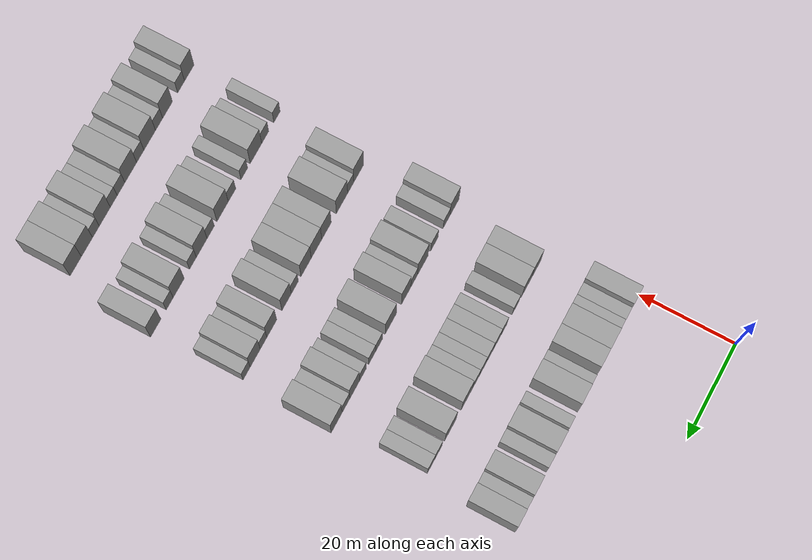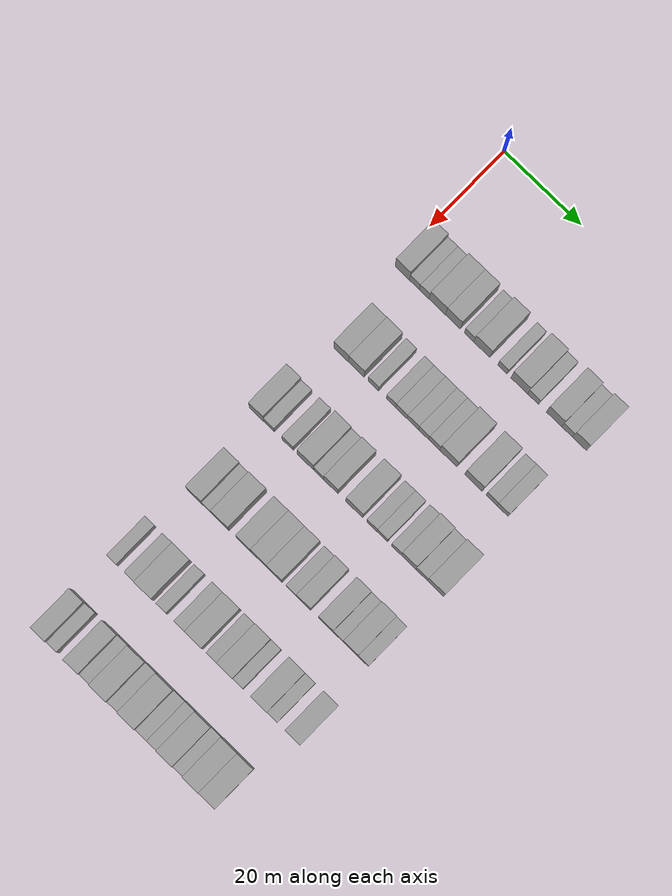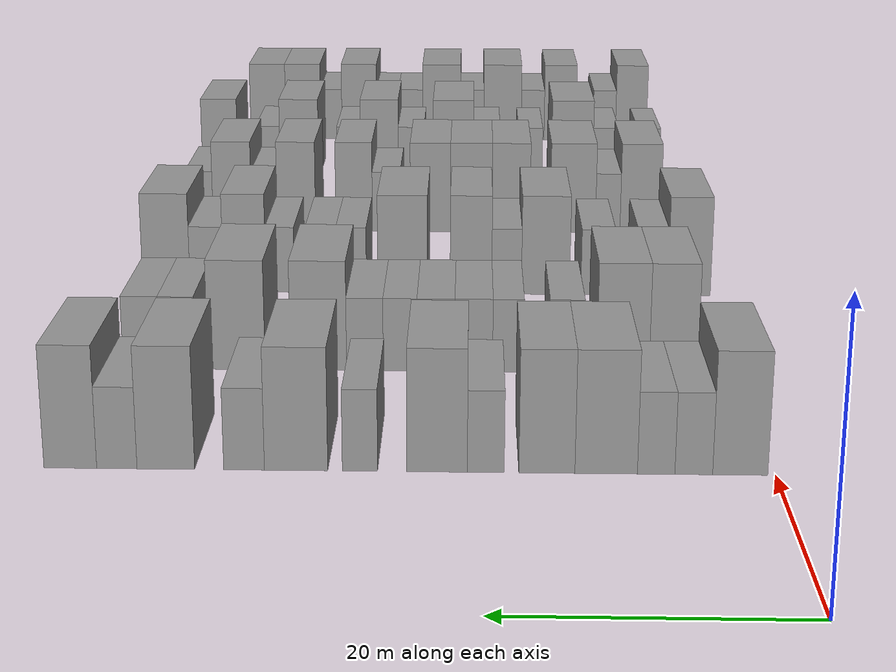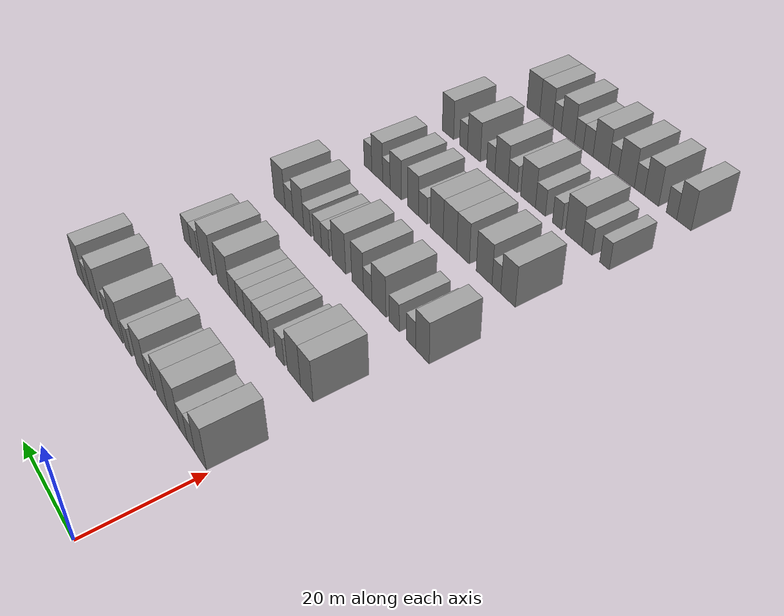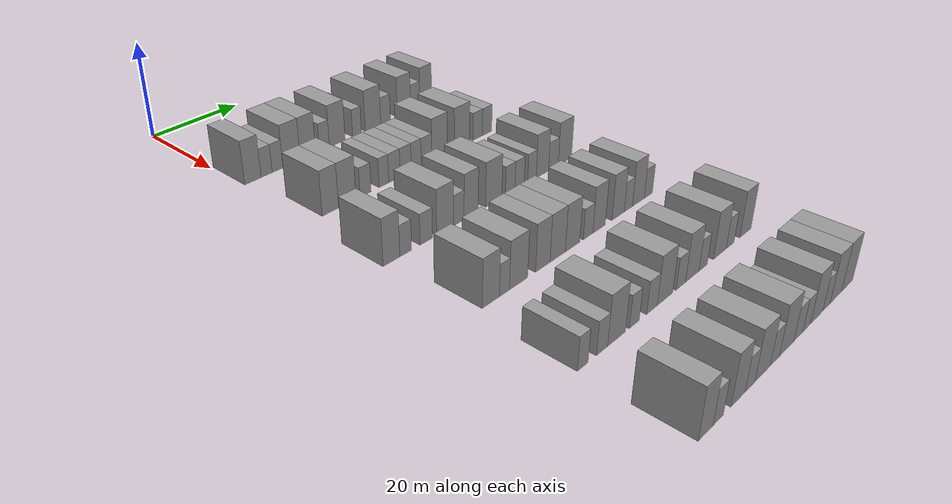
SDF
<sdf version="1.6">
 <world name="default">
  <model name="building_87">
   <static>1</static>
   <pose>25.0000 2.4082 0 0.000000 0.000000 0.000000</pose>
   <link name="link">
    <pose>0 0 4.50 0 0 0</pose>
    <collision name="collision"><geometry><box><size>10.0000 3.7510 9.0000</size></box></geometry></collision>
    <visual name="visual">
     <cast_shadows>0</cast_shadows>
     <geometry><box><size>10.0000 3.7510 9.0000</size></box></geometry>
     <material>
      <script>
       <uri>model://grey_wall/materials/scripts</uri>
       <uri>model://grey_wall/materials/textures</uri>
       <name>vrc/grey_wall</name>
      </script>
     </material>
    </visual>
   </link>
  </model>
  <model name="building_88">
   <static>1</static>
   <pose>25.0000 5.5675 0 0.000000 0.000000 0.000000</pose>
   <link name="link">
    <pose>0 0 3.00 0 0 0</pose>
    <collision name="collision"><geometry><box><size>10.0000 2.5676 6.0000</size></box></geometry></collision>
    <visual name="visual">
     <cast_shadows>0</cast_shadows>
     <geometry><box><size>10.0000 2.5676 6.0000</size></box></geometry>
     <material>
      <script>
       <uri>model://grey_wall/materials/scripts</uri>
       <uri>model://grey_wall/materials/textures</uri>
       <name>vrc/grey_wall</name>
      </script>
     </material>
    </visual>
   </link>
  </model>
  <model name="building_89">
   <static>1</static>
   <pose>25.0000 8.1268 0 0.000000 0.000000 0.000000</pose>
   <link name="link">
    <pose>0 0 3.00 0 0 0</pose>
    <collision name="collision"><geometry><box><size>10.0000 2.5512 6.0000</size></box></geometry></collision>
    <visual name="visual">
     <cast_shadows>0</cast_shadows>
     <geometry><box><size>10.0000 2.5512 6.0000</size></box></geometry>
     <material>
      <script>
       <uri>model://grey_wall/materials/scripts</uri>
       <uri>model://grey_wall/materials/textures</uri>
       <name>vrc/grey_wall</name>
      </script>
     </material>
    </visual>
   </link>
  </model>
  <model name="building_90">
   <static>1</static>
   <pose>25.0000 11.5328 0 0.000000 0.000000 0.000000</pose>
   <link name="link">
    <pose>0 0 4.50 0 0 0</pose>
    <collision name="collision"><geometry><box><size>10.0000 4.2607 9.0000</size></box></geometry></collision>
    <visual name="visual">
     <cast_shadows>0</cast_shadows>
     <geometry><box><size>10.0000 4.2607 9.0000</size></box></geometry>
     <material>
      <script>
       <uri>model://grey_wall/materials/scripts</uri>
       <uri>model://grey_wall/materials/textures</uri>
       <name>vrc/grey_wall</name>
      </script>
     </material>
    </visual>
   </link>
  </model>
  <model name="building_91">
   <static>1</static>
   <pose>25.0000 15.5744 0 0.000000 0.000000 0.000000</pose>
   <link name="link">
    <pose>0 0 4.50 0 0 0</pose>
    <collision name="collision"><geometry><box><size>10.0000 3.8226 9.0000</size></box></geometry></collision>
    <visual name="visual">
     <cast_shadows>0</cast_shadows>
     <geometry><box><size>10.0000 3.8226 9.0000</size></box></geometry>
     <material>
      <script>
       <uri>model://grey_wall/materials/scripts</uri>
       <uri>model://grey_wall/materials/textures</uri>
       <name>vrc/grey_wall</name>
      </script>
     </material>
    </visual>
   </link>
  </model>
  <model name="building_92">
   <static>1</static>
   <pose>25.0000 19.7482 0 0.000000 0.000000 0.000000</pose>
   <link name="link">
    <pose>0 0 3.00 0 0 0</pose>
    <collision name="collision"><geometry><box><size>10.0000 2.5250 6.0000</size></box></geometry></collision>
    <visual name="visual">
     <cast_shadows>0</cast_shadows>
     <geometry><box><size>10.0000 2.5250 6.0000</size></box></geometry>
     <material>
      <script>
       <uri>model://grey_wall/materials/scripts</uri>
       <uri>model://grey_wall/materials/textures</uri>
       <name>vrc/grey_wall</name>
      </script>
     </material>
    </visual>
   </link>
  </model>
  <model name="building_93">
   <static>1</static>
   <pose>25.0000 23.0848 0 0.000000 0.000000 0.000000</pose>
   <link name="link">
    <pose>0 0 4.50 0 0 0</pose>
    <collision name="collision"><geometry><box><size>10.0000 4.1483 9.0000</size></box></geometry></collision>
    <visual name="visual">
     <cast_shadows>0</cast_shadows>
     <geometry><box><size>10.0000 4.1483 9.0000</size></box></geometry>
     <material>
      <script>
       <uri>model://grey_wall/materials/scripts</uri>
       <uri>model://grey_wall/materials/textures</uri>
       <name>vrc/grey_wall</name>
      </script>
     </material>
    </visual>
   </link>
  </model>
  <model name="building_94">
   <static>1</static>
   <pose>25.0000 28.3677 0 0.000000 0.000000 0.000000</pose>
   <link name="link">
    <pose>0 0 3.00 0 0 0</pose>
    <collision name="collision"><geometry><box><size>10.0000 2.4173 6.0000</size></box></geometry></collision>
    <visual name="visual">
     <cast_shadows>0</cast_shadows>
     <geometry><box><size>10.0000 2.4173 6.0000</size></box></geometry>
     <material>
      <script>
       <uri>model://grey_wall/materials/scripts</uri>
       <uri>model://grey_wall/materials/textures</uri>
       <name>vrc/grey_wall</name>
      </script>
     </material>
    </visual>
   </link>
  </model>
  <model name="building_95">
   <static>1</static>
   <pose>25.0000 32.7526 0 0.000000 0.000000 0.000000</pose>
   <link name="link">
    <pose>0 0 4.50 0 0 0</pose>
    <collision name="collision"><geometry><box><size>10.0000 4.3526 9.0000</size></box></geometry></collision>
    <visual name="visual">
     <cast_shadows>0</cast_shadows>
     <geometry><box><size>10.0000 4.3526 9.0000</size></box></geometry>
     <material>
      <script>
       <uri>model://grey_wall/materials/scripts</uri>
       <uri>model://grey_wall/materials/textures</uri>
       <name>vrc/grey_wall</name>
      </script>
     </material>
    </visual>
   </link>
  </model>
  <model name="building_96">
   <static>1</static>
   <pose>25.0000 36.3295 0 0.000000 0.000000 0.000000</pose>
   <link name="link">
    <pose>0 0 3.00 0 0 0</pose>
    <collision name="collision"><geometry><box><size>10.0000 2.8012 6.0000</size></box></geometry></collision>
    <visual name="visual">
     <cast_shadows>0</cast_shadows>
     <geometry><box><size>10.0000 2.8012 6.0000</size></box></geometry>
     <material>
      <script>
       <uri>model://grey_wall/materials/scripts</uri>
       <uri>model://grey_wall/materials/textures</uri>
       <name>vrc/grey_wall</name>
      </script>
     </material>
    </visual>
   </link>
  </model>
  <model name="building_97">
   <static>1</static>
   <pose>25.0000 41.7178 0 0.000000 0.000000 0.000000</pose>
   <link name="link">
    <pose>0 0 4.50 0 0 0</pose>
    <collision name="collision"><geometry><box><size>10.0000 3.9753 9.0000</size></box></geometry></collision>
    <visual name="visual">
     <cast_shadows>0</cast_shadows>
     <geometry><box><size>10.0000 3.9753 9.0000</size></box></geometry>
     <material>
      <script>
       <uri>model://grey_wall/materials/scripts</uri>
       <uri>model://grey_wall/materials/textures</uri>
       <name>vrc/grey_wall</name>
      </script>
     </material>
    </visual>
   </link>
  </model>
  <model name="building_98">
   <static>1</static>
   <pose>25.0000 45.0978 0 0.000000 0.000000 0.000000</pose>
   <link name="link">
    <pose>0 0 3.00 0 0 0</pose>
    <collision name="collision"><geometry><box><size>10.0000 2.7848 6.0000</size></box></geometry></collision>
    <visual name="visual">
     <cast_shadows>0</cast_shadows>
     <geometry><box><size>10.0000 2.7848 6.0000</size></box></geometry>
     <material>
      <script>
       <uri>model://grey_wall/materials/scripts</uri>
       <uri>model://grey_wall/materials/textures</uri>
       <name>vrc/grey_wall</name>
      </script>
     </material>
    </visual>
   </link>
  </model>
  <model name="building_99">
   <static>1</static>
   <pose>25.0000 48.3134 0 0.000000 0.000000 0.000000</pose>
   <link name="link">
    <pose>0 0 4.50 0 0 0</pose>
    <collision name="collision"><geometry><box><size>10.0000 3.6464 9.0000</size></box></geometry></collision>
    <visual name="visual">
     <cast_shadows>0</cast_shadows>
     <geometry><box><size>10.0000 3.6464 9.0000</size></box></geometry>
     <material>
      <script>
       <uri>model://grey_wall/materials/scripts</uri>
       <uri>model://grey_wall/materials/textures</uri>
       <name>vrc/grey_wall</name>
      </script>
     </material>
    </visual>
   </link>
  </model>
  <model name="building_267">
   <static>1</static>
   <pose>44.0000 4.9500 0 0.000000 0.000000 0.000000</pose>
   <link name="link">
    <pose>0 0 4.50 0 0 0</pose>
    <collision name="collision"><geometry><box><size>10.0000 3.7941 9.0000</size></box></geometry></collision>
    <visual name="visual">
     <cast_shadows>0</cast_shadows>
     <geometry><box><size>10.0000 3.7941 9.0000</size></box></geometry>
     <material>
      <script>
       <uri>model://grey_wall/materials/scripts</uri>
       <uri>model://grey_wall/materials/textures</uri>
       <name>vrc/grey_wall</name>
      </script>
     </material>
    </visual>
   </link>
  </model>
  <model name="building_268">
   <static>1</static>
   <pose>44.0000 8.8960 0 0.000000 0.000000 0.000000</pose>
   <link name="link">
    <pose>0 0 4.50 0 0 0</pose>
    <collision name="collision"><geometry><box><size>10.0000 4.0979 9.0000</size></box></geometry></collision>
    <visual name="visual">
     <cast_shadows>0</cast_shadows>
     <geometry><box><size>10.0000 4.0979 9.0000</size></box></geometry>
     <material>
      <script>
       <uri>model://grey_wall/materials/scripts</uri>
       <uri>model://grey_wall/materials/textures</uri>
       <name>vrc/grey_wall</name>
      </script>
     </material>
    </visual>
   </link>
  </model>
  <model name="building_269">
   <static>1</static>
   <pose>44.0000 13.3048 0 0.000000 0.000000 0.000000</pose>
   <link name="link">
    <pose>0 0 3.00 0 0 0</pose>
    <collision name="collision"><geometry><box><size>10.0000 2.7197 6.0000</size></box></geometry></collision>
    <visual name="visual">
     <cast_shadows>0</cast_shadows>
     <geometry><box><size>10.0000 2.7197 6.0000</size></box></geometry>
     <material>
      <script>
       <uri>model://grey_wall/materials/scripts</uri>
       <uri>model://grey_wall/materials/textures</uri>
       <name>vrc/grey_wall</name>
      </script>
     </material>
    </visual>
   </link>
  </model>
  <model name="building_270">
   <static>1</static>
   <pose>44.0000 17.8804 0 0.000000 0.000000 0.000000</pose>
   <link name="link">
    <pose>0 0 3.00 0 0 0</pose>
    <collision name="collision"><geometry><box><size>10.0000 2.4316 6.0000</size></box></geometry></collision>
    <visual name="visual">
     <cast_shadows>0</cast_shadows>
     <geometry><box><size>10.0000 2.4316 6.0000</size></box></geometry>
     <material>
      <script>
       <uri>model://grey_wall/materials/scripts</uri>
       <uri>model://grey_wall/materials/textures</uri>
       <name>vrc/grey_wall</name>
      </script>
     </material>
    </visual>
   </link>
  </model>
  <model name="building_271">
   <static>1</static>
   <pose>44.0000 20.5821 0 0.000000 0.000000 0.000000</pose>
   <link name="link">
    <pose>0 0 3.00 0 0 0</pose>
    <collision name="collision"><geometry><box><size>10.0000 2.9718 6.0000</size></box></geometry></collision>
    <visual name="visual">
     <cast_shadows>0</cast_shadows>
     <geometry><box><size>10.0000 2.9718 6.0000</size></box></geometry>
     <material>
      <script>
       <uri>model://grey_wall/materials/scripts</uri>
       <uri>model://grey_wall/materials/textures</uri>
       <name>vrc/grey_wall</name>
      </script>
     </material>
    </visual>
   </link>
  </model>
  <model name="building_272">
   <static>1</static>
   <pose>44.0000 23.5474 0 0.000000 0.000000 0.000000</pose>
   <link name="link">
    <pose>0 0 3.00 0 0 0</pose>
    <collision name="collision"><geometry><box><size>10.0000 2.9587 6.0000</size></box></geometry></collision>
    <visual name="visual">
     <cast_shadows>0</cast_shadows>
     <geometry><box><size>10.0000 2.9587 6.0000</size></box></geometry>
     <material>
      <script>
       <uri>model://grey_wall/materials/scripts</uri>
       <uri>model://grey_wall/materials/textures</uri>
       <name>vrc/grey_wall</name>
      </script>
     </material>
    </visual>
   </link>
  </model>
  <model name="building_273">
   <static>1</static>
   <pose>44.0000 26.3529 0 0.000000 0.000000 0.000000</pose>
   <link name="link">
    <pose>0 0 3.00 0 0 0</pose>
    <collision name="collision"><geometry><box><size>10.0000 2.6524 6.0000</size></box></geometry></collision>
    <visual name="visual">
     <cast_shadows>0</cast_shadows>
     <geometry><box><size>10.0000 2.6524 6.0000</size></box></geometry>
     <material>
      <script>
       <uri>model://grey_wall/materials/scripts</uri>
       <uri>model://grey_wall/materials/textures</uri>
       <name>vrc/grey_wall</name>
      </script>
     </material>
    </visual>
   </link>
  </model>
  <model name="building_274">
   <static>1</static>
   <pose>44.0000 29.1200 0 0.000000 0.000000 0.000000</pose>
   <link name="link">
    <pose>0 0 3.00 0 0 0</pose>
    <collision name="collision"><geometry><box><size>10.0000 2.8819 6.0000</size></box></geometry></collision>
    <visual name="visual">
     <cast_shadows>0</cast_shadows>
     <geometry><box><size>10.0000 2.8819 6.0000</size></box></geometry>
     <material>
      <script>
       <uri>model://grey_wall/materials/scripts</uri>
       <uri>model://grey_wall/materials/textures</uri>
       <name>vrc/grey_wall</name>
      </script>
     </material>
    </visual>
   </link>
  </model>
  <model name="building_275">
   <static>1</static>
   <pose>44.0000 32.7678 0 0.000000 0.000000 0.000000</pose>
   <link name="link">
    <pose>0 0 4.50 0 0 0</pose>
    <collision name="collision"><geometry><box><size>10.0000 4.4136 9.0000</size></box></geometry></collision>
    <visual name="visual">
     <cast_shadows>0</cast_shadows>
     <geometry><box><size>10.0000 4.4136 9.0000</size></box></geometry>
     <material>
      <script>
       <uri>model://grey_wall/materials/scripts</uri>
       <uri>model://grey_wall/materials/textures</uri>
       <name>vrc/grey_wall</name>
      </script>
     </material>
    </visual>
   </link>
  </model>
  <model name="building_276">
   <static>1</static>
   <pose>44.0000 39.2244 0 0.000000 0.000000 0.000000</pose>
   <link name="link">
    <pose>0 0 4.50 0 0 0</pose>
    <collision name="collision"><geometry><box><size>10.0000 4.4996 9.0000</size></box></geometry></collision>
    <visual name="visual">
     <cast_shadows>0</cast_shadows>
     <geometry><box><size>10.0000 4.4996 9.0000</size></box></geometry>
     <material>
      <script>
       <uri>model://grey_wall/materials/scripts</uri>
       <uri>model://grey_wall/materials/textures</uri>
       <name>vrc/grey_wall</name>
      </script>
     </material>
    </visual>
   </link>
  </model>
  <model name="building_277">
   <static>1</static>
   <pose>44.0000 43.8831 0 0.000000 0.000000 0.000000</pose>
   <link name="link">
    <pose>0 0 3.00 0 0 0</pose>
    <collision name="collision"><geometry><box><size>10.0000 2.8178 6.0000</size></box></geometry></collision>
    <visual name="visual">
     <cast_shadows>0</cast_shadows>
     <geometry><box><size>10.0000 2.8178 6.0000</size></box></geometry>
     <material>
      <script>
       <uri>model://grey_wall/materials/scripts</uri>
       <uri>model://grey_wall/materials/textures</uri>
       <name>vrc/grey_wall</name>
      </script>
     </material>
    </visual>
   </link>
  </model>
  <model name="building_278">
   <static>1</static>
   <pose>44.0000 46.7448 0 0.000000 0.000000 0.000000</pose>
   <link name="link">
    <pose>0 0 3.00 0 0 0</pose>
    <collision name="collision"><geometry><box><size>10.0000 2.9056 6.0000</size></box></geometry></collision>
    <visual name="visual">
     <cast_shadows>0</cast_shadows>
     <geometry><box><size>10.0000 2.9056 6.0000</size></box></geometry>
     <material>
      <script>
       <uri>model://grey_wall/materials/scripts</uri>
       <uri>model://grey_wall/materials/textures</uri>
       <name>vrc/grey_wall</name>
      </script>
     </material>
    </visual>
   </link>
  </model>
  <model name="building_441">
   <static>1</static>
   <pose>63.0000 1.5656 0 0.000000 0.000000 0.000000</pose>
   <link name="link">
    <pose>0 0 4.50 0 0 0</pose>
    <collision name="collision"><geometry><box><size>10.0000 3.7555 9.0000</size></box></geometry></collision>
    <visual name="visual">
     <cast_shadows>0</cast_shadows>
     <geometry><box><size>10.0000 3.7555 9.0000</size></box></geometry>
     <material>
      <script>
       <uri>model://grey_wall/materials/scripts</uri>
       <uri>model://grey_wall/materials/textures</uri>
       <name>vrc/grey_wall</name>
      </script>
     </material>
    </visual>
   </link>
  </model>
  <model name="building_442">
   <static>1</static>
   <pose>63.0000 4.7955 0 0.000000 0.000000 0.000000</pose>
   <link name="link">
    <pose>0 0 3.00 0 0 0</pose>
    <collision name="collision"><geometry><box><size>10.0000 2.7044 6.0000</size></box></geometry></collision>
    <visual name="visual">
     <cast_shadows>0</cast_shadows>
     <geometry><box><size>10.0000 2.7044 6.0000</size></box></geometry>
     <material>
      <script>
       <uri>model://grey_wall/materials/scripts</uri>
       <uri>model://grey_wall/materials/textures</uri>
       <name>vrc/grey_wall</name>
      </script>
     </material>
    </visual>
   </link>
  </model>
  <model name="building_443">
   <static>1</static>
   <pose>63.0000 9.6226 0 0.000000 0.000000 0.000000</pose>
   <link name="link">
    <pose>0 0 3.00 0 0 0</pose>
    <collision name="collision"><geometry><box><size>10.0000 2.9498 6.0000</size></box></geometry></collision>
    <visual name="visual">
     <cast_shadows>0</cast_shadows>
     <geometry><box><size>10.0000 2.9498 6.0000</size></box></geometry>
     <material>
      <script>
       <uri>model://grey_wall/materials/scripts</uri>
       <uri>model://grey_wall/materials/textures</uri>
       <name>vrc/grey_wall</name>
      </script>
     </material>
    </visual>
   </link>
  </model>
  <model name="building_444">
   <static>1</static>
   <pose>63.0000 14.2232 0 0.000000 0.000000 0.000000</pose>
   <link name="link">
    <pose>0 0 4.50 0 0 0</pose>
    <collision name="collision"><geometry><box><size>10.0000 4.2514 9.0000</size></box></geometry></collision>
    <visual name="visual">
     <cast_shadows>0</cast_shadows>
     <geometry><box><size>10.0000 4.2514 9.0000</size></box></geometry>
     <material>
      <script>
       <uri>model://grey_wall/materials/scripts</uri>
       <uri>model://grey_wall/materials/textures</uri>
       <name>vrc/grey_wall</name>
      </script>
     </material>
    </visual>
   </link>
  </model>
  <model name="building_445">
   <static>1</static>
   <pose>63.0000 17.6641 0 0.000000 0.000000 0.000000</pose>
   <link name="link">
    <pose>0 0 3.00 0 0 0</pose>
    <collision name="collision"><geometry><box><size>10.0000 2.6304 6.0000</size></box></geometry></collision>
    <visual name="visual">
     <cast_shadows>0</cast_shadows>
     <geometry><box><size>10.0000 2.6304 6.0000</size></box></geometry>
     <material>
      <script>
       <uri>model://grey_wall/materials/scripts</uri>
       <uri>model://grey_wall/materials/textures</uri>
       <name>vrc/grey_wall</name>
      </script>
     </material>
    </visual>
   </link>
  </model>
  <model name="building_446">
   <static>1</static>
   <pose>63.0000 20.8182 0 0.000000 0.000000 0.000000</pose>
   <link name="link">
    <pose>0 0 4.50 0 0 0</pose>
    <collision name="collision"><geometry><box><size>10.0000 3.6778 9.0000</size></box></geometry></collision>
    <visual name="visual">
     <cast_shadows>0</cast_shadows>
     <geometry><box><size>10.0000 3.6778 9.0000</size></box></geometry>
     <material>
      <script>
       <uri>model://grey_wall/materials/scripts</uri>
       <uri>model://grey_wall/materials/textures</uri>
       <name>vrc/grey_wall</name>
      </script>
     </material>
    </visual>
   </link>
  </model>
  <model name="building_447">
   <static>1</static>
   <pose>63.0000 26.8643 0 0.000000 0.000000 0.000000</pose>
   <link name="link">
    <pose>0 0 4.50 0 0 0</pose>
    <collision name="collision"><geometry><box><size>10.0000 4.4143 9.0000</size></box></geometry></collision>
    <visual name="visual">
     <cast_shadows>0</cast_shadows>
     <geometry><box><size>10.0000 4.4143 9.0000</size></box></geometry>
     <material>
      <script>
       <uri>model://grey_wall/materials/scripts</uri>
       <uri>model://grey_wall/materials/textures</uri>
       <name>vrc/grey_wall</name>
      </script>
     </material>
    </visual>
   </link>
  </model>
  <model name="building_448">
   <static>1</static>
   <pose>63.0000 31.4119 0 0.000000 0.000000 0.000000</pose>
   <link name="link">
    <pose>0 0 3.00 0 0 0</pose>
    <collision name="collision"><geometry><box><size>10.0000 2.6809 6.0000</size></box></geometry></collision>
    <visual name="visual">
     <cast_shadows>0</cast_shadows>
     <geometry><box><size>10.0000 2.6809 6.0000</size></box></geometry>
     <material>
      <script>
       <uri>model://grey_wall/materials/scripts</uri>
       <uri>model://grey_wall/materials/textures</uri>
       <name>vrc/grey_wall</name>
      </script>
     </material>
    </visual>
   </link>
  </model>
  <model name="building_449">
   <static>1</static>
   <pose>63.0000 34.1039 0 0.000000 0.000000 0.000000</pose>
   <link name="link">
    <pose>0 0 3.00 0 0 0</pose>
    <collision name="collision"><geometry><box><size>10.0000 2.7030 6.0000</size></box></geometry></collision>
    <visual name="visual">
     <cast_shadows>0</cast_shadows>
     <geometry><box><size>10.0000 2.7030 6.0000</size></box></geometry>
     <material>
      <script>
       <uri>model://grey_wall/materials/scripts</uri>
       <uri>model://grey_wall/materials/textures</uri>
       <name>vrc/grey_wall</name>
      </script>
     </material>
    </visual>
   </link>
  </model>
  <model name="building_450">
   <static>1</static>
   <pose>63.0000 37.7254 0 0.000000 0.000000 0.000000</pose>
   <link name="link">
    <pose>0 0 3.00 0 0 0</pose>
    <collision name="collision"><geometry><box><size>10.0000 2.5400 6.0000</size></box></geometry></collision>
    <visual name="visual">
     <cast_shadows>0</cast_shadows>
     <geometry><box><size>10.0000 2.5400 6.0000</size></box></geometry>
     <material>
      <script>
       <uri>model://grey_wall/materials/scripts</uri>
       <uri>model://grey_wall/materials/textures</uri>
       <name>vrc/grey_wall</name>
      </script>
     </material>
    </visual>
   </link>
  </model>
  <model name="building_451">
   <static>1</static>
   <pose>63.0000 40.8870 0 0.000000 0.000000 0.000000</pose>
   <link name="link">
    <pose>0 0 4.50 0 0 0</pose>
    <collision name="collision"><geometry><box><size>10.0000 3.7831 9.0000</size></box></geometry></collision>
    <visual name="visual">
     <cast_shadows>0</cast_shadows>
     <geometry><box><size>10.0000 3.7831 9.0000</size></box></geometry>
     <material>
      <script>
       <uri>model://grey_wall/materials/scripts</uri>
       <uri>model://grey_wall/materials/textures</uri>
       <name>vrc/grey_wall</name>
      </script>
     </material>
    </visual>
   </link>
  </model>
  <model name="building_452">
   <static>1</static>
   <pose>63.0000 44.2665 0 0.000000 0.000000 0.000000</pose>
   <link name="link">
    <pose>0 0 3.00 0 0 0</pose>
    <collision name="collision"><geometry><box><size>10.0000 2.9758 6.0000</size></box></geometry></collision>
    <visual name="visual">
     <cast_shadows>0</cast_shadows>
     <geometry><box><size>10.0000 2.9758 6.0000</size></box></geometry>
     <material>
      <script>
       <uri>model://grey_wall/materials/scripts</uri>
       <uri>model://grey_wall/materials/textures</uri>
       <name>vrc/grey_wall</name>
      </script>
     </material>
    </visual>
   </link>
  </model>
  <model name="building_453">
   <static>1</static>
   <pose>63.0000 47.8612 0 0.000000 0.000000 0.000000</pose>
   <link name="link">
    <pose>0 0 4.50 0 0 0</pose>
    <collision name="collision"><geometry><box><size>10.0000 4.2136 9.0000</size></box></geometry></collision>
    <visual name="visual">
     <cast_shadows>0</cast_shadows>
     <geometry><box><size>10.0000 4.2136 9.0000</size></box></geometry>
     <material>
      <script>
       <uri>model://grey_wall/materials/scripts</uri>
       <uri>model://grey_wall/materials/textures</uri>
       <name>vrc/grey_wall</name>
      </script>
     </material>
    </visual>
   </link>
  </model>
  <model name="building_612">
   <static>1</static>
   <pose>82.0000 4.1869 0 0.000000 0.000000 0.000000</pose>
   <link name="link">
    <pose>0 0 4.50 0 0 0</pose>
    <collision name="collision"><geometry><box><size>10.0000 3.9731 9.0000</size></box></geometry></collision>
    <visual name="visual">
     <cast_shadows>0</cast_shadows>
     <geometry><box><size>10.0000 3.9731 9.0000</size></box></geometry>
     <material>
      <script>
       <uri>model://grey_wall/materials/scripts</uri>
       <uri>model://grey_wall/materials/textures</uri>
       <name>vrc/grey_wall</name>
      </script>
     </material>
    </visual>
   </link>
  </model>
  <model name="building_613">
   <static>1</static>
   <pose>82.0000 7.3832 0 0.000000 0.000000 0.000000</pose>
   <link name="link">
    <pose>0 0 3.00 0 0 0</pose>
    <collision name="collision"><geometry><box><size>10.0000 2.4195 6.0000</size></box></geometry></collision>
    <visual name="visual">
     <cast_shadows>0</cast_shadows>
     <geometry><box><size>10.0000 2.4195 6.0000</size></box></geometry>
     <material>
      <script>
       <uri>model://grey_wall/materials/scripts</uri>
       <uri>model://grey_wall/materials/textures</uri>
       <name>vrc/grey_wall</name>
      </script>
     </material>
    </visual>
   </link>
  </model>
  <model name="building_614">
   <static>1</static>
   <pose>82.0000 10.8108 0 0.000000 0.000000 0.000000</pose>
   <link name="link">
    <pose>0 0 4.50 0 0 0</pose>
    <collision name="collision"><geometry><box><size>10.0000 4.4359 9.0000</size></box></geometry></collision>
    <visual name="visual">
     <cast_shadows>0</cast_shadows>
     <geometry><box><size>10.0000 4.4359 9.0000</size></box></geometry>
     <material>
      <script>
       <uri>model://grey_wall/materials/scripts</uri>
       <uri>model://grey_wall/materials/textures</uri>
       <name>vrc/grey_wall</name>
      </script>
     </material>
    </visual>
   </link>
  </model>
  <model name="building_615">
   <static>1</static>
   <pose>82.0000 16.8968 0 0.000000 0.000000 0.000000</pose>
   <link name="link">
    <pose>0 0 4.50 0 0 0</pose>
    <collision name="collision"><geometry><box><size>10.0000 3.7361 9.0000</size></box></geometry></collision>
    <visual name="visual">
     <cast_shadows>0</cast_shadows>
     <geometry><box><size>10.0000 3.7361 9.0000</size></box></geometry>
     <material>
      <script>
       <uri>model://grey_wall/materials/scripts</uri>
       <uri>model://grey_wall/materials/textures</uri>
       <name>vrc/grey_wall</name>
      </script>
     </material>
    </visual>
   </link>
  </model>
  <model name="building_616">
   <static>1</static>
   <pose>82.0000 20.8107 0 0.000000 0.000000 0.000000</pose>
   <link name="link">
    <pose>0 0 4.50 0 0 0</pose>
    <collision name="collision"><geometry><box><size>10.0000 4.0918 9.0000</size></box></geometry></collision>
    <visual name="visual">
     <cast_shadows>0</cast_shadows>
     <geometry><box><size>10.0000 4.0918 9.0000</size></box></geometry>
     <material>
      <script>
       <uri>model://grey_wall/materials/scripts</uri>
       <uri>model://grey_wall/materials/textures</uri>
       <name>vrc/grey_wall</name>
      </script>
     </material>
    </visual>
   </link>
  </model>
  <model name="building_617">
   <static>1</static>
   <pose>82.0000 24.8374 0 0.000000 0.000000 0.000000</pose>
   <link name="link">
    <pose>0 0 4.50 0 0 0</pose>
    <collision name="collision"><geometry><box><size>10.0000 3.9616 9.0000</size></box></geometry></collision>
    <visual name="visual">
     <cast_shadows>0</cast_shadows>
     <geometry><box><size>10.0000 3.9616 9.0000</size></box></geometry>
     <material>
      <script>
       <uri>model://grey_wall/materials/scripts</uri>
       <uri>model://grey_wall/materials/textures</uri>
       <name>vrc/grey_wall</name>
      </script>
     </material>
    </visual>
   </link>
  </model>
  <model name="building_618">
   <static>1</static>
   <pose>82.0000 29.1905 0 0.000000 0.000000 0.000000</pose>
   <link name="link">
    <pose>0 0 3.00 0 0 0</pose>
    <collision name="collision"><geometry><box><size>10.0000 2.7445 6.0000</size></box></geometry></collision>
    <visual name="visual">
     <cast_shadows>0</cast_shadows>
     <geometry><box><size>10.0000 2.7445 6.0000</size></box></geometry>
     <material>
      <script>
       <uri>model://grey_wall/materials/scripts</uri>
       <uri>model://grey_wall/materials/textures</uri>
       <name>vrc/grey_wall</name>
      </script>
     </material>
    </visual>
   </link>
  </model>
  <model name="building_619">
   <static>1</static>
   <pose>82.0000 32.3657 0 0.000000 0.000000 0.000000</pose>
   <link name="link">
    <pose>0 0 4.50 0 0 0</pose>
    <collision name="collision"><geometry><box><size>10.0000 3.6060 9.0000</size></box></geometry></collision>
    <visual name="visual">
     <cast_shadows>0</cast_shadows>
     <geometry><box><size>10.0000 3.6060 9.0000</size></box></geometry>
     <material>
      <script>
       <uri>model://grey_wall/materials/scripts</uri>
       <uri>model://grey_wall/materials/textures</uri>
       <name>vrc/grey_wall</name>
      </script>
     </material>
    </visual>
   </link>
  </model>
  <model name="building_620">
   <static>1</static>
   <pose>82.0000 38.0632 0 0.000000 0.000000 0.000000</pose>
   <link name="link">
    <pose>0 0 4.50 0 0 0</pose>
    <collision name="collision"><geometry><box><size>10.0000 3.7889 9.0000</size></box></geometry></collision>
    <visual name="visual">
     <cast_shadows>0</cast_shadows>
     <geometry><box><size>10.0000 3.7889 9.0000</size></box></geometry>
     <material>
      <script>
       <uri>model://grey_wall/materials/scripts</uri>
       <uri>model://grey_wall/materials/textures</uri>
       <name>vrc/grey_wall</name>
      </script>
     </material>
    </visual>
   </link>
  </model>
  <model name="building_621">
   <static>1</static>
   <pose>82.0000 41.2232 0 0.000000 0.000000 0.000000</pose>
   <link name="link">
    <pose>0 0 3.00 0 0 0</pose>
    <collision name="collision"><geometry><box><size>10.0000 2.5311 6.0000</size></box></geometry></collision>
    <visual name="visual">
     <cast_shadows>0</cast_shadows>
     <geometry><box><size>10.0000 2.5311 6.0000</size></box></geometry>
     <material>
      <script>
       <uri>model://grey_wall/materials/scripts</uri>
       <uri>model://grey_wall/materials/textures</uri>
       <name>vrc/grey_wall</name>
      </script>
     </material>
    </visual>
   </link>
  </model>
  <model name="building_622">
   <static>1</static>
   <pose>82.0000 44.4005 0 0.000000 0.000000 0.000000</pose>
   <link name="link">
    <pose>0 0 4.50 0 0 0</pose>
    <collision name="collision"><geometry><box><size>10.0000 3.8234 9.0000</size></box></geometry></collision>
    <visual name="visual">
     <cast_shadows>0</cast_shadows>
     <geometry><box><size>10.0000 3.8234 9.0000</size></box></geometry>
     <material>
      <script>
       <uri>model://grey_wall/materials/scripts</uri>
       <uri>model://grey_wall/materials/textures</uri>
       <name>vrc/grey_wall</name>
      </script>
     </material>
    </visual>
   </link>
  </model>
  <model name="building_623">
   <static>1</static>
   <pose>82.0000 47.6516 0 0.000000 0.000000 0.000000</pose>
   <link name="link">
    <pose>0 0 3.00 0 0 0</pose>
    <collision name="collision"><geometry><box><size>10.0000 2.6788 6.0000</size></box></geometry></collision>
    <visual name="visual">
     <cast_shadows>0</cast_shadows>
     <geometry><box><size>10.0000 2.6788 6.0000</size></box></geometry>
     <material>
      <script>
       <uri>model://grey_wall/materials/scripts</uri>
       <uri>model://grey_wall/materials/textures</uri>
       <name>vrc/grey_wall</name>
      </script>
     </material>
    </visual>
   </link>
  </model>
  <model name="building_795">
   <static>1</static>
   <pose>101.0000 1.7011 0 0.000000 0.000000 0.000000</pose>
   <link name="link">
    <pose>0 0 3.00 0 0 0</pose>
    <collision name="collision"><geometry><box><size>10.0000 2.4750 6.0000</size></box></geometry></collision>
    <visual name="visual">
     <cast_shadows>0</cast_shadows>
     <geometry><box><size>10.0000 2.4750 6.0000</size></box></geometry>
     <material>
      <script>
       <uri>model://grey_wall/materials/scripts</uri>
       <uri>model://grey_wall/materials/textures</uri>
       <name>vrc/grey_wall</name>
      </script>
     </material>
    </visual>
   </link>
  </model>
  <model name="building_796">
   <static>1</static>
   <pose>101.0000 6.3035 0 0.000000 0.000000 0.000000</pose>
   <link name="link">
    <pose>0 0 3.00 0 0 0</pose>
    <collision name="collision"><geometry><box><size>10.0000 2.7299 6.0000</size></box></geometry></collision>
    <visual name="visual">
     <cast_shadows>0</cast_shadows>
     <geometry><box><size>10.0000 2.7299 6.0000</size></box></geometry>
     <material>
      <script>
       <uri>model://grey_wall/materials/scripts</uri>
       <uri>model://grey_wall/materials/textures</uri>
       <name>vrc/grey_wall</name>
      </script>
     </material>
    </visual>
   </link>
  </model>
  <model name="building_797">
   <static>1</static>
   <pose>101.0000 9.9056 0 0.000000 0.000000 0.000000</pose>
   <link name="link">
    <pose>0 0 4.50 0 0 0</pose>
    <collision name="collision"><geometry><box><size>10.0000 4.4742 9.0000</size></box></geometry></collision>
    <visual name="visual">
     <cast_shadows>0</cast_shadows>
     <geometry><box><size>10.0000 4.4742 9.0000</size></box></geometry>
     <material>
      <script>
       <uri>model://grey_wall/materials/scripts</uri>
       <uri>model://grey_wall/materials/textures</uri>
       <name>vrc/grey_wall</name>
      </script>
     </material>
    </visual>
   </link>
  </model>
  <model name="building_798">
   <static>1</static>
   <pose>101.0000 14.4424 0 0.000000 0.000000 0.000000</pose>
   <link name="link">
    <pose>0 0 3.00 0 0 0</pose>
    <collision name="collision"><geometry><box><size>10.0000 2.5995 6.0000</size></box></geometry></collision>
    <visual name="visual">
     <cast_shadows>0</cast_shadows>
     <geometry><box><size>10.0000 2.5995 6.0000</size></box></geometry>
     <material>
      <script>
       <uri>model://grey_wall/materials/scripts</uri>
       <uri>model://grey_wall/materials/textures</uri>
       <name>vrc/grey_wall</name>
      </script>
     </material>
    </visual>
   </link>
  </model>
  <model name="building_799">
   <static>1</static>
   <pose>101.0000 19.1825 0 0.000000 0.000000 0.000000</pose>
   <link name="link">
    <pose>0 0 3.00 0 0 0</pose>
    <collision name="collision"><geometry><box><size>10.0000 2.8809 6.0000</size></box></geometry></collision>
    <visual name="visual">
     <cast_shadows>0</cast_shadows>
     <geometry><box><size>10.0000 2.8809 6.0000</size></box></geometry>
     <material>
      <script>
       <uri>model://grey_wall/materials/scripts</uri>
       <uri>model://grey_wall/materials/textures</uri>
       <name>vrc/grey_wall</name>
      </script>
     </material>
    </visual>
   </link>
  </model>
  <model name="building_800">
   <static>1</static>
   <pose>101.0000 22.7941 0 0.000000 0.000000 0.000000</pose>
   <link name="link">
    <pose>0 0 4.50 0 0 0</pose>
    <collision name="collision"><geometry><box><size>10.0000 4.3423 9.0000</size></box></geometry></collision>
    <visual name="visual">
     <cast_shadows>0</cast_shadows>
     <geometry><box><size>10.0000 4.3423 9.0000</size></box></geometry>
     <material>
      <script>
       <uri>model://grey_wall/materials/scripts</uri>
       <uri>model://grey_wall/materials/textures</uri>
       <name>vrc/grey_wall</name>
      </script>
     </material>
    </visual>
   </link>
  </model>
  <model name="building_801">
   <static>1</static>
   <pose>101.0000 27.3637 0 0.000000 0.000000 0.000000</pose>
   <link name="link">
    <pose>0 0 3.00 0 0 0</pose>
    <collision name="collision"><geometry><box><size>10.0000 2.7969 6.0000</size></box></geometry></collision>
    <visual name="visual">
     <cast_shadows>0</cast_shadows>
     <geometry><box><size>10.0000 2.7969 6.0000</size></box></geometry>
     <material>
      <script>
       <uri>model://grey_wall/materials/scripts</uri>
       <uri>model://grey_wall/materials/textures</uri>
       <name>vrc/grey_wall</name>
      </script>
     </material>
    </visual>
   </link>
  </model>
  <model name="building_802">
   <static>1</static>
   <pose>101.0000 30.8039 0 0.000000 0.000000 0.000000</pose>
   <link name="link">
    <pose>0 0 4.50 0 0 0</pose>
    <collision name="collision"><geometry><box><size>10.0000 4.0835 9.0000</size></box></geometry></collision>
    <visual name="visual">
     <cast_shadows>0</cast_shadows>
     <geometry><box><size>10.0000 4.0835 9.0000</size></box></geometry>
     <material>
      <script>
       <uri>model://grey_wall/materials/scripts</uri>
       <uri>model://grey_wall/materials/textures</uri>
       <name>vrc/grey_wall</name>
      </script>
     </material>
    </visual>
   </link>
  </model>
  <model name="building_803">
   <static>1</static>
   <pose>101.0000 34.1363 0 0.000000 0.000000 0.000000</pose>
   <link name="link">
    <pose>0 0 3.00 0 0 0</pose>
    <collision name="collision"><geometry><box><size>10.0000 2.5813 6.0000</size></box></geometry></collision>
    <visual name="visual">
     <cast_shadows>0</cast_shadows>
     <geometry><box><size>10.0000 2.5813 6.0000</size></box></geometry>
     <material>
      <script>
       <uri>model://grey_wall/materials/scripts</uri>
       <uri>model://grey_wall/materials/textures</uri>
       <name>vrc/grey_wall</name>
      </script>
     </material>
    </visual>
   </link>
  </model>
  <model name="building_804">
   <static>1</static>
   <pose>101.0000 39.5192 0 0.000000 0.000000 0.000000</pose>
   <link name="link">
    <pose>0 0 4.50 0 0 0</pose>
    <collision name="collision"><geometry><box><size>10.0000 4.1844 9.0000</size></box></geometry></collision>
    <visual name="visual">
     <cast_shadows>0</cast_shadows>
     <geometry><box><size>10.0000 4.1844 9.0000</size></box></geometry>
     <material>
      <script>
       <uri>model://grey_wall/materials/scripts</uri>
       <uri>model://grey_wall/materials/textures</uri>
       <name>vrc/grey_wall</name>
      </script>
     </material>
    </visual>
   </link>
  </model>
  <model name="building_805">
   <static>1</static>
   <pose>101.0000 42.9150 0 0.000000 0.000000 0.000000</pose>
   <link name="link">
    <pose>0 0 3.00 0 0 0</pose>
    <collision name="collision"><geometry><box><size>10.0000 2.6073 6.0000</size></box></geometry></collision>
    <visual name="visual">
     <cast_shadows>0</cast_shadows>
     <geometry><box><size>10.0000 2.6073 6.0000</size></box></geometry>
     <material>
      <script>
       <uri>model://grey_wall/materials/scripts</uri>
       <uri>model://grey_wall/materials/textures</uri>
       <name>vrc/grey_wall</name>
      </script>
     </material>
    </visual>
   </link>
  </model>
  <model name="building_806">
   <static>1</static>
   <pose>101.0000 48.1481 0 0.000000 0.000000 0.000000</pose>
   <link name="link">
    <pose>0 0 4.50 0 0 0</pose>
    <collision name="collision"><geometry><box><size>10.0000 3.8589 9.0000</size></box></geometry></collision>
    <visual name="visual">
     <cast_shadows>0</cast_shadows>
     <geometry><box><size>10.0000 3.8589 9.0000</size></box></geometry>
     <material>
      <script>
       <uri>model://grey_wall/materials/scripts</uri>
       <uri>model://grey_wall/materials/textures</uri>
       <name>vrc/grey_wall</name>
      </script>
     </material>
    </visual>
   </link>
  </model>
  <model name="building_963">
   <static>1</static>
   <pose>120.0000 1.9425 0 0.000000 0.000000 0.000000</pose>
   <link name="link">
    <pose>0 0 4.50 0 0 0</pose>
    <collision name="collision"><geometry><box><size>10.0000 3.6637 9.0000</size></box></geometry></collision>
    <visual name="visual">
     <cast_shadows>0</cast_shadows>
     <geometry><box><size>10.0000 3.6637 9.0000</size></box></geometry>
     <material>
      <script>
       <uri>model://grey_wall/materials/scripts</uri>
       <uri>model://grey_wall/materials/textures</uri>
       <name>vrc/grey_wall</name>
      </script>
     </material>
    </visual>
   </link>
  </model>
  <model name="building_964">
   <static>1</static>
   <pose>120.0000 5.1042 0 0.000000 0.000000 0.000000</pose>
   <link name="link">
    <pose>0 0 3.00 0 0 0</pose>
    <collision name="collision"><geometry><box><size>10.0000 2.6596 6.0000</size></box></geometry></collision>
    <visual name="visual">
     <cast_shadows>0</cast_shadows>
     <geometry><box><size>10.0000 2.6596 6.0000</size></box></geometry>
     <material>
      <script>
       <uri>model://grey_wall/materials/scripts</uri>
       <uri>model://grey_wall/materials/textures</uri>
       <name>vrc/grey_wall</name>
      </script>
     </material>
    </visual>
   </link>
  </model>
  <model name="building_965">
   <static>1</static>
   <pose>120.0000 10.3248 0 0.000000 0.000000 0.000000</pose>
   <link name="link">
    <pose>0 0 4.50 0 0 0</pose>
    <collision name="collision"><geometry><box><size>10.0000 3.7816 9.0000</size></box></geometry></collision>
    <visual name="visual">
     <cast_shadows>0</cast_shadows>
     <geometry><box><size>10.0000 3.7816 9.0000</size></box></geometry>
     <material>
      <script>
       <uri>model://grey_wall/materials/scripts</uri>
       <uri>model://grey_wall/materials/textures</uri>
       <name>vrc/grey_wall</name>
      </script>
     </material>
    </visual>
   </link>
  </model>
  <model name="building_966">
   <static>1</static>
   <pose>120.0000 13.5783 0 0.000000 0.000000 0.000000</pose>
   <link name="link">
    <pose>0 0 3.00 0 0 0</pose>
    <collision name="collision"><geometry><box><size>10.0000 2.7254 6.0000</size></box></geometry></collision>
    <visual name="visual">
     <cast_shadows>0</cast_shadows>
     <geometry><box><size>10.0000 2.7254 6.0000</size></box></geometry>
     <material>
      <script>
       <uri>model://grey_wall/materials/scripts</uri>
       <uri>model://grey_wall/materials/textures</uri>
       <name>vrc/grey_wall</name>
      </script>
     </material>
    </visual>
   </link>
  </model>
  <model name="building_967">
   <static>1</static>
   <pose>120.0000 17.1554 0 0.000000 0.000000 0.000000</pose>
   <link name="link">
    <pose>0 0 4.50 0 0 0</pose>
    <collision name="collision"><geometry><box><size>10.0000 4.4289 9.0000</size></box></geometry></collision>
    <visual name="visual">
     <cast_shadows>0</cast_shadows>
     <geometry><box><size>10.0000 4.4289 9.0000</size></box></geometry>
     <material>
      <script>
       <uri>model://grey_wall/materials/scripts</uri>
       <uri>model://grey_wall/materials/textures</uri>
       <name>vrc/grey_wall</name>
      </script>
     </material>
    </visual>
   </link>
  </model>
  <model name="building_968">
   <static>1</static>
   <pose>120.0000 20.7475 0 0.000000 0.000000 0.000000</pose>
   <link name="link">
    <pose>0 0 3.00 0 0 0</pose>
    <collision name="collision"><geometry><box><size>10.0000 2.7553 6.0000</size></box></geometry></collision>
    <visual name="visual">
     <cast_shadows>0</cast_shadows>
     <geometry><box><size>10.0000 2.7553 6.0000</size></box></geometry>
     <material>
      <script>
       <uri>model://grey_wall/materials/scripts</uri>
       <uri>model://grey_wall/materials/textures</uri>
       <name>vrc/grey_wall</name>
      </script>
     </material>
    </visual>
   </link>
  </model>
  <model name="building_969">
   <static>1</static>
   <pose>120.0000 24.3669 0 0.000000 0.000000 0.000000</pose>
   <link name="link">
    <pose>0 0 4.50 0 0 0</pose>
    <collision name="collision"><geometry><box><size>10.0000 4.4835 9.0000</size></box></geometry></collision>
    <visual name="visual">
     <cast_shadows>0</cast_shadows>
     <geometry><box><size>10.0000 4.4835 9.0000</size></box></geometry>
     <material>
      <script>
       <uri>model://grey_wall/materials/scripts</uri>
       <uri>model://grey_wall/materials/textures</uri>
       <name>vrc/grey_wall</name>
      </script>
     </material>
    </visual>
   </link>
  </model>
  <model name="building_970">
   <static>1</static>
   <pose>120.0000 28.0488 0 0.000000 0.000000 0.000000</pose>
   <link name="link">
    <pose>0 0 3.00 0 0 0</pose>
    <collision name="collision"><geometry><box><size>10.0000 2.8802 6.0000</size></box></geometry></collision>
    <visual name="visual">
     <cast_shadows>0</cast_shadows>
     <geometry><box><size>10.0000 2.8802 6.0000</size></box></geometry>
     <material>
      <script>
       <uri>model://grey_wall/materials/scripts</uri>
       <uri>model://grey_wall/materials/textures</uri>
       <name>vrc/grey_wall</name>
      </script>
     </material>
    </visual>
   </link>
  </model>
  <model name="building_971">
   <static>1</static>
   <pose>120.0000 30.7795 0 0.000000 0.000000 0.000000</pose>
   <link name="link">
    <pose>0 0 3.00 0 0 0</pose>
    <collision name="collision"><geometry><box><size>10.0000 2.5812 6.0000</size></box></geometry></collision>
    <visual name="visual">
     <cast_shadows>0</cast_shadows>
     <geometry><box><size>10.0000 2.5812 6.0000</size></box></geometry>
     <material>
      <script>
       <uri>model://grey_wall/materials/scripts</uri>
       <uri>model://grey_wall/materials/textures</uri>
       <name>vrc/grey_wall</name>
      </script>
     </material>
    </visual>
   </link>
  </model>
  <model name="building_972">
   <static>1</static>
   <pose>120.0000 34.1424 0 0.000000 0.000000 0.000000</pose>
   <link name="link">
    <pose>0 0 4.50 0 0 0</pose>
    <collision name="collision"><geometry><box><size>10.0000 4.1445 9.0000</size></box></geometry></collision>
    <visual name="visual">
     <cast_shadows>0</cast_shadows>
     <geometry><box><size>10.0000 4.1445 9.0000</size></box></geometry>
     <material>
      <script>
       <uri>model://grey_wall/materials/scripts</uri>
       <uri>model://grey_wall/materials/textures</uri>
       <name>vrc/grey_wall</name>
      </script>
     </material>
    </visual>
   </link>
  </model>
  <model name="building_973">
   <static>1</static>
   <pose>120.0000 37.4750 0 0.000000 0.000000 0.000000</pose>
   <link name="link">
    <pose>0 0 3.00 0 0 0</pose>
    <collision name="collision"><geometry><box><size>10.0000 2.5207 6.0000</size></box></geometry></collision>
    <visual name="visual">
     <cast_shadows>0</cast_shadows>
     <geometry><box><size>10.0000 2.5207 6.0000</size></box></geometry>
     <material>
      <script>
       <uri>model://grey_wall/materials/scripts</uri>
       <uri>model://grey_wall/materials/textures</uri>
       <name>vrc/grey_wall</name>
      </script>
     </material>
    </visual>
   </link>
  </model>
  <model name="building_974">
   <static>1</static>
   <pose>120.0000 40.8128 0 0.000000 0.000000 0.000000</pose>
   <link name="link">
    <pose>0 0 4.50 0 0 0</pose>
    <collision name="collision"><geometry><box><size>10.0000 4.1550 9.0000</size></box></geometry></collision>
    <visual name="visual">
     <cast_shadows>0</cast_shadows>
     <geometry><box><size>10.0000 4.1550 9.0000</size></box></geometry>
     <material>
      <script>
       <uri>model://grey_wall/materials/scripts</uri>
       <uri>model://grey_wall/materials/textures</uri>
       <name>vrc/grey_wall</name>
      </script>
     </material>
    </visual>
   </link>
  </model>
  <model name="building_975">
   <static>1</static>
   <pose>120.0000 44.9779 0 0.000000 0.000000 0.000000</pose>
   <link name="link">
    <pose>0 0 4.50 0 0 0</pose>
    <collision name="collision"><geometry><box><size>10.0000 4.1752 9.0000</size></box></geometry></collision>
    <visual name="visual">
     <cast_shadows>0</cast_shadows>
     <geometry><box><size>10.0000 4.1752 9.0000</size></box></geometry>
     <material>
      <script>
       <uri>model://grey_wall/materials/scripts</uri>
       <uri>model://grey_wall/materials/textures</uri>
       <name>vrc/grey_wall</name>
      </script>
     </material>
    </visual>
   </link>
  </model>
 </world>
</sdf>
